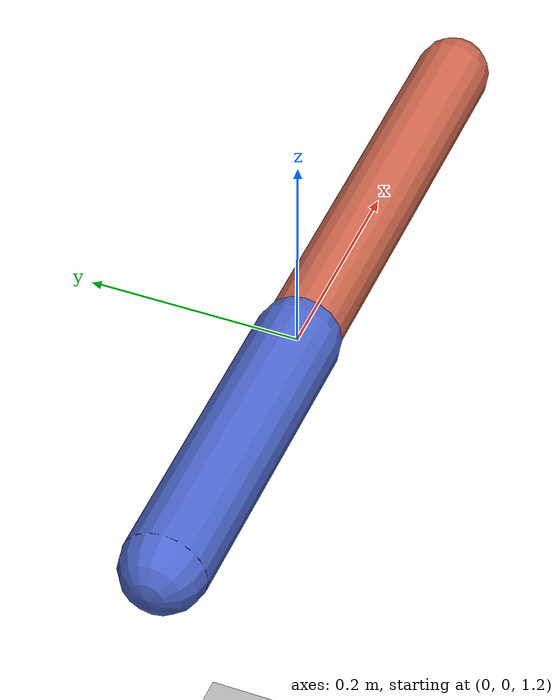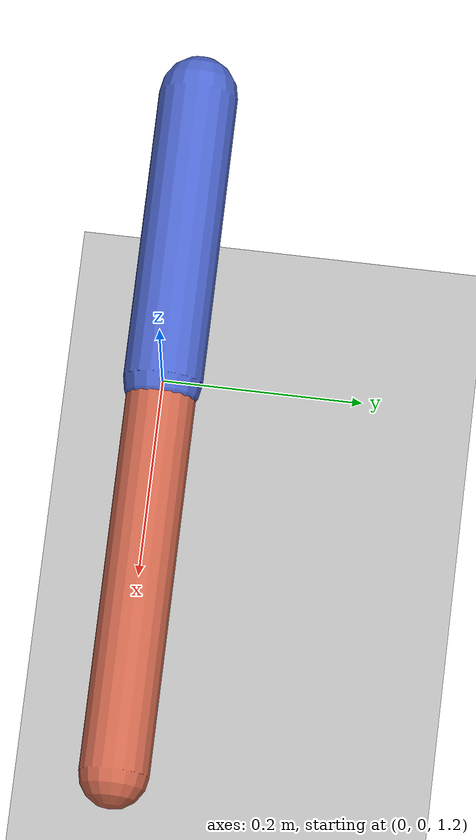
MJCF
<mujoco model="single_joint_elbow">
  <compiler angle="radian"/>
  <option timestep="0.001" integrator="implicitfast" gravity="0 0 -9.81"/>
  <default>
    <joint limited="true" damping="0.02"/>
    <geom friction="0.8 0.01 0.001" condim="3"/>
  </default>
  <worldbody>
    <light pos="0 0 3" dir="0 0 -1"/>
    <geom name="floor" type="plane" size="3 3 0.1" rgba="0.7 0.7 0.7 1"/>
    <body name="base" pos="0 0 1.2">
      <geom name="upper_arm_geom" type="capsule" fromto="-0.3 0 0 0 0 0"
            size="0.04" mass="0.6" rgba="0.3 0.4 0.8 1"/>
      <body name="forearm" pos="0 0 0">
        <joint name="elbow" type="hinge" axis="0 1 0"
               range="-1.5 1.5"/>
        <geom name="forearm_geom" type="capsule" fromto="0 0 0 0.4 0 0"
              size="0.035" mass="1.0" rgba="0.8 0.4 0.3 1"/>
        <site name="biceps_insertion" pos="0.05 0 0" size="0.008"/>
      </body>
    </body>
  </worldbody>
  <sensor>
    <jointpos name="elbow_position" joint="elbow"/>
    <jointvel name="elbow_velocity" joint="elbow"/>
  </sensor>
</mujoco>
